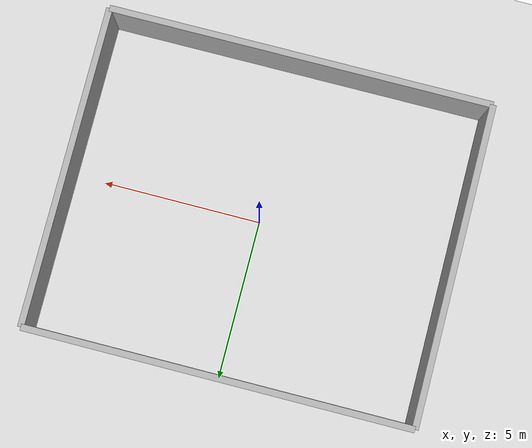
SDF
<?xml version="1.0"?>
<sdf version="1.9">
  <world name="pedestrian_dynamic">
    <gravity>0 0 -9.8</gravity>
    <plugin filename="ignition-gazebo-physics-system" name="ignition::gazebo::systems::Physics"/>
    <plugin filename="ignition-gazebo-scene-broadcaster-system" name="ignition::gazebo::systems::SceneBroadcaster"/>
    <plugin filename="ignition-gazebo-user-commands-system" name="ignition::gazebo::systems::UserCommands"/>
    <plugin filename="ignition-gazebo-sensors-system" name="ignition::gazebo::systems::Sensors">
      <render_engine>ogre2</render_engine>
    </plugin>

    <light name="sun" type="directional">
      <pose>0 0 10 0 0 0</pose>
      <visualize>false</visualize>
      <diffuse>0.8 0.8 0.8 1</diffuse>
      <direction>-0.5 0.1 -0.9</direction>
    </light>

    <!-- 地面 -->
    <model name="ground_plane">
      <static>true</static>
      <link name="link">
        <collision name="collision"><geometry><plane><normal>0 0 1</normal><size>20 20</size></plane></geometry></collision>
        <visual name="visual"><geometry><plane><normal>0 0 1</normal><size>20 20</size></plane></geometry><material><diffuse>0.85 0.85 0.85 1</diffuse></material></visual>
      </link>
    </model>

    <!-- 走廊墙壁 - 上 -->
    <model name="wall_north">
      <static>true</static>
      <pose>0 5 1 0 0 0</pose>
      <link name="link">
        <collision name="collision"><geometry><box><size>12 0.2 2</size></box></geometry></collision>
        <visual name="visual"><geometry><box><size>12 0.2 2</size></box></geometry><material><diffuse>0.7 0.7 0.7 1</diffuse></material></visual>
      </link>
    </model>

    <!-- 走廊墙壁 - 下 -->
    <model name="wall_south">
      <static>true</static>
      <pose>0 -5 1 0 0 0</pose>
      <link name="link">
        <collision name="collision"><geometry><box><size>12 0.2 2</size></box></geometry></collision>
        <visual name="visual"><geometry><box><size>12 0.2 2</size></box></geometry><material><diffuse>0.7 0.7 0.7 1</diffuse></material></visual>
      </link>
    </model>

    <!-- 走廊墙壁 - 左 -->
    <model name="wall_west">
      <static>true</static>
      <pose>-6 0 1 0 0 0</pose>
      <link name="link">
        <collision name="collision"><geometry><box><size>0.2 10 2</size></box></geometry></collision>
        <visual name="visual"><geometry><box><size>0.2 10 2</size></box></geometry><material><diffuse>0.7 0.7 0.7 1</diffuse></material></visual>
      </link>
    </model>

    <!-- 走廊墙壁 - 右 -->
    <model name="wall_east">
      <static>true</static>
      <pose>6 0 1 0 0 0</pose>
      <link name="link">
        <collision name="collision"><geometry><box><size>0.2 10 2</size></box></geometry></collision>
        <visual name="visual"><geometry><box><size>0.2 10 2</size></box></geometry><material><diffuse>0.7 0.7 0.7 1</diffuse></material></visual>
      </link>
    </model>

  </world>
</sdf>
